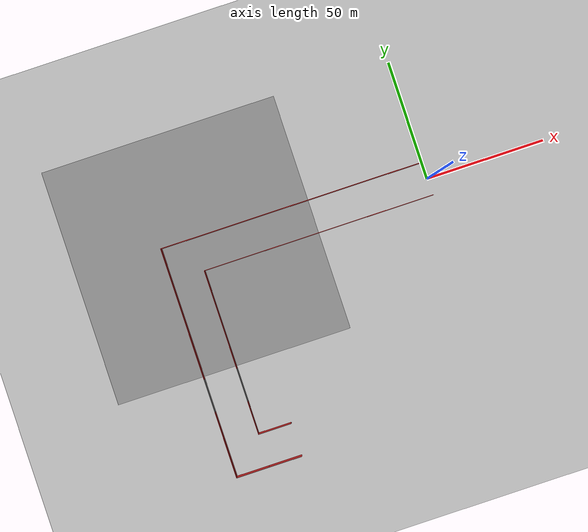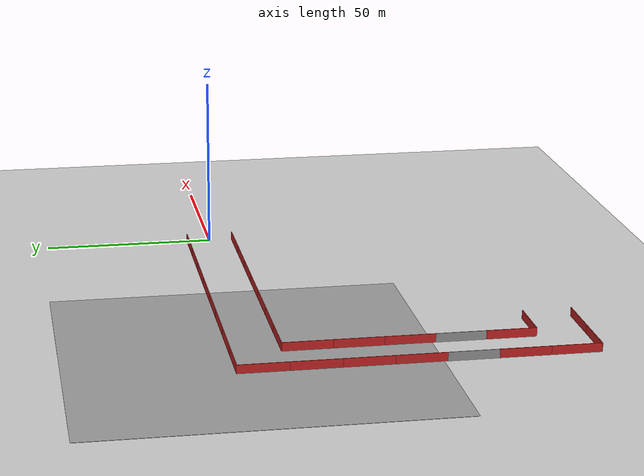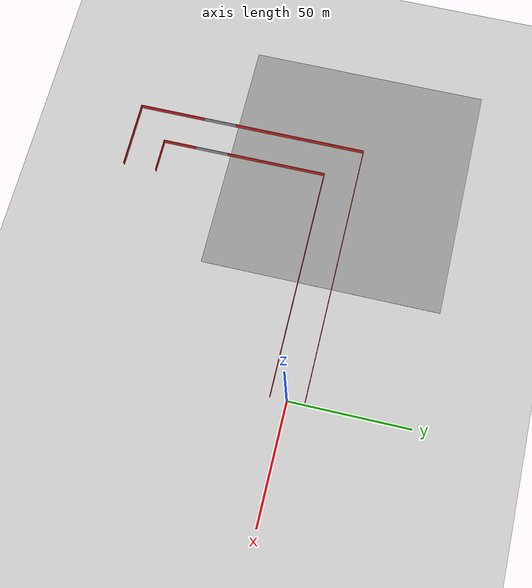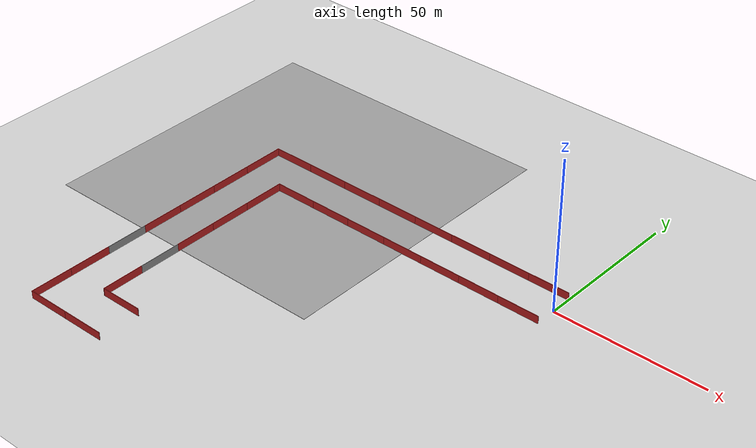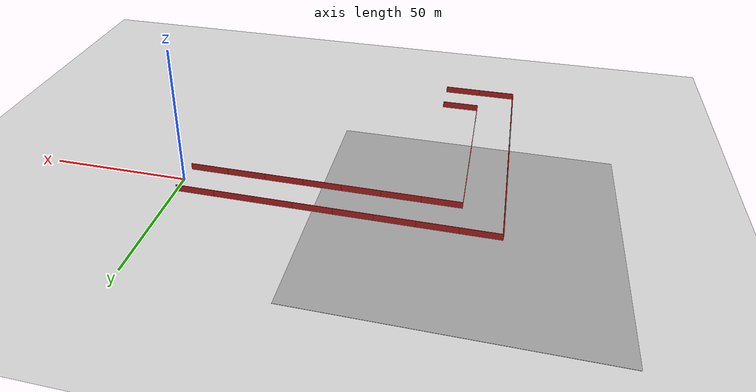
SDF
<sdf version="1.4">
 <world name="default">
  <model name="staright_28m_11">
   <link name="Wall_26">
    <collision name="Wall_26_Collision">
     <geometry><box><size>14 0.2 2.5</size></box></geometry>
     <pose>0 0 1.25 0 -0 0</pose>
    </collision>
    <visual name="Wall_26_Visual">
     <pose>0 0 1.25 0 -0 0</pose>
     <geometry><box><size>14 0.2 2.5</size></box></geometry>
     <material>
      <script>
       <uri>model://materials/scripts</uri>
       <uri>model://materials/textures</uri>
       <name>vrc/red_wall</name>
      </script>
     </material>
    </visual>
    <velocity_decay><linear>0</linear><angular>0</angular></velocity_decay>
    <pose>-7 -7 0 0 -0 0</pose>
   </link>
   <link name="Wall_28">
    <collision name="Wall_28_Collision">
     <geometry><box><size>14 0.2 2.5</size></box></geometry>
     <pose>0 0 1.25 0 -0 0</pose>
    </collision>
    <visual name="Wall_28_Visual">
     <pose>0 0 1.25 0 -0 0</pose>
     <geometry><box><size>14 0.2 2.5</size></box></geometry>
     <material>
      <script>
       <uri>model://materials/scripts</uri>
       <uri>model://materials/textures</uri>
       <name>vrc/red_wall</name>
      </script>
     </material>
    </visual>
    <velocity_decay><linear>0</linear><angular>0</angular></velocity_decay>
    <pose>-7 7 0 0 -0 0</pose>
   </link>
   <static>1</static>
   <link name="Wall_27">
    <collision name="Wall_26_Collision">
     <geometry><box><size>14 0.2 2.5</size></box></geometry>
     <pose>0 0 1.25 0 -0 0</pose>
    </collision>
    <visual name="Wall_26_Visual">
     <pose>0 0 1.25 0 -0 0</pose>
     <geometry><box><size>14 0.2 2.5</size></box></geometry>
     <material>
      <script>
       <uri>model://materials/scripts</uri>
       <uri>model://materials/textures</uri>
       <name>vrc/red_wall</name>
      </script>
     </material>
    </visual>
    <velocity_decay><linear>0</linear><angular>0</angular></velocity_decay>
    <pose>7 -7 0 0 -0 0</pose>
   </link>
   <link name="Wall_29">
    <collision name="Wall_28_Collision">
     <geometry><box><size>14 0.2 2.5</size></box></geometry>
     <pose>0 0 1.25 0 -0 0</pose>
    </collision>
    <visual name="Wall_28_Visual">
     <pose>0 0 1.25 0 -0 0</pose>
     <geometry><box><size>14 0.2 2.5</size></box></geometry>
     <material>
      <script>
       <uri>model://materials/scripts</uri>
       <uri>model://materials/textures</uri>
       <name>vrc/red_wall</name>
      </script>
     </material>
    </visual>
    <velocity_decay><linear>0</linear><angular>0</angular></velocity_decay>
    <pose>7 7 0 0 -0 0</pose>
   </link>
   <static>1</static>
   <pose>-14 0 0 0 -0 0</pose>
  </model>
  <model name="staright_28m_12">
   <link name="Wall_26">
    <collision name="Wall_26_Collision">
     <geometry><box><size>14 0.2 2.5</size></box></geometry>
     <pose>0 0 1.25 0 -0 0</pose>
    </collision>
    <visual name="Wall_26_Visual">
     <pose>0 0 1.25 0 -0 0</pose>
     <geometry><box><size>14 0.2 2.5</size></box></geometry>
     <material>
      <script>
       <uri>model://materials/scripts</uri>
       <uri>model://materials/textures</uri>
       <name>vrc/red_wall</name>
      </script>
     </material>
    </visual>
    <velocity_decay><linear>0</linear><angular>0</angular></velocity_decay>
    <pose>-7 -7 0 0 -0 0</pose>
   </link>
   <link name="Wall_28">
    <collision name="Wall_28_Collision">
     <geometry><box><size>14 0.2 2.5</size></box></geometry>
     <pose>0 0 1.25 0 -0 0</pose>
    </collision>
    <visual name="Wall_28_Visual">
     <pose>0 0 1.25 0 -0 0</pose>
     <geometry><box><size>14 0.2 2.5</size></box></geometry>
     <material>
      <script>
       <uri>model://materials/scripts</uri>
       <uri>model://materials/textures</uri>
       <name>vrc/red_wall</name>
      </script>
     </material>
    </visual>
    <velocity_decay><linear>0</linear><angular>0</angular></velocity_decay>
    <pose>-7 7 0 0 -0 0</pose>
   </link>
   <static>1</static>
   <link name="Wall_27">
    <collision name="Wall_26_Collision">
     <geometry><box><size>14 0.2 2.5</size></box></geometry>
     <pose>0 0 1.25 0 -0 0</pose>
    </collision>
    <visual name="Wall_26_Visual">
     <pose>0 0 1.25 0 -0 0</pose>
     <geometry><box><size>14 0.2 2.5</size></box></geometry>
     <material>
      <script>
       <uri>model://materials/scripts</uri>
       <uri>model://materials/textures</uri>
       <name>vrc/red_wall</name>
      </script>
     </material>
    </visual>
    <velocity_decay><linear>0</linear><angular>0</angular></velocity_decay>
    <pose>7 -7 0 0 -0 0</pose>
   </link>
   <link name="Wall_29">
    <collision name="Wall_28_Collision">
     <geometry><box><size>14 0.2 2.5</size></box></geometry>
     <pose>0 0 1.25 0 -0 0</pose>
    </collision>
    <visual name="Wall_28_Visual">
     <pose>0 0 1.25 0 -0 0</pose>
     <geometry><box><size>14 0.2 2.5</size></box></geometry>
     <material>
      <script>
       <uri>model://materials/scripts</uri>
       <uri>model://materials/textures</uri>
       <name>vrc/red_wall</name>
      </script>
     </material>
    </visual>
    <velocity_decay><linear>0</linear><angular>0</angular></velocity_decay>
    <pose>7 7 0 0 -0 0</pose>
   </link>
   <static>1</static>
   <pose>-42 0 0 0 -0 0</pose>
  </model>
  <model name="staright_28m_13">
   <link name="Wall_26">
    <collision name="Wall_26_Collision">
     <geometry><box><size>14 0.2 2.5</size></box></geometry>
     <pose>0 0 1.25 0 -0 0</pose>
    </collision>
    <visual name="Wall_26_Visual">
     <pose>0 0 1.25 0 -0 0</pose>
     <geometry><box><size>14 0.2 2.5</size></box></geometry>
     <material>
      <script>
       <uri>model://materials/scripts</uri>
       <uri>model://materials/textures</uri>
       <name>vrc/red_wall</name>
      </script>
     </material>
    </visual>
    <velocity_decay><linear>0</linear><angular>0</angular></velocity_decay>
    <pose>-7 -7 0 0 -0 0</pose>
   </link>
   <link name="Wall_28">
    <collision name="Wall_28_Collision">
     <geometry><box><size>14 0.2 2.5</size></box></geometry>
     <pose>0 0 1.25 0 -0 0</pose>
    </collision>
    <visual name="Wall_28_Visual">
     <pose>0 0 1.25 0 -0 0</pose>
     <geometry><box><size>14 0.2 2.5</size></box></geometry>
     <material>
      <script>
       <uri>model://materials/scripts</uri>
       <uri>model://materials/textures</uri>
       <name>vrc/red_wall</name>
      </script>
     </material>
    </visual>
    <velocity_decay><linear>0</linear><angular>0</angular></velocity_decay>
    <pose>-7 7 0 0 -0 0</pose>
   </link>
   <static>1</static>
   <link name="Wall_27">
    <collision name="Wall_26_Collision">
     <geometry><box><size>14 0.2 2.5</size></box></geometry>
     <pose>0 0 1.25 0 -0 0</pose>
    </collision>
    <visual name="Wall_26_Visual">
     <pose>0 0 1.25 0 -0 0</pose>
     <geometry><box><size>14 0.2 2.5</size></box></geometry>
     <material>
      <script>
       <uri>model://materials/scripts</uri>
       <uri>model://materials/textures</uri>
       <name>vrc/red_wall</name>
      </script>
     </material>
    </visual>
    <velocity_decay><linear>0</linear><angular>0</angular></velocity_decay>
    <pose>7 -7 0 0 -0 0</pose>
   </link>
   <link name="Wall_29">
    <collision name="Wall_28_Collision">
     <geometry><box><size>14 0.2 2.5</size></box></geometry>
     <pose>0 0 1.25 0 -0 0</pose>
    </collision>
    <visual name="Wall_28_Visual">
     <pose>0 0 1.25 0 -0 0</pose>
     <geometry><box><size>14 0.2 2.5</size></box></geometry>
     <material>
      <script>
       <uri>model://materials/scripts</uri>
       <uri>model://materials/textures</uri>
       <name>vrc/red_wall</name>
      </script>
     </material>
    </visual>
    <velocity_decay><linear>0</linear><angular>0</angular></velocity_decay>
    <pose>7 7 0 0 -0 0</pose>
   </link>
   <static>1</static>
   <pose>-70 0 0 0 -0 0</pose>
  </model>
  <model name="right_angle_turn_4">
   <link name="Wall_0">
    <collision name="Wall_0_Collision">
     <geometry><box><size>14.1 0.2 2.5</size></box></geometry>
     <pose>0 0 1.25 0 -0 0</pose>
    </collision>
    <visual name="Wall_0_Visual">
     <pose>0 0 1.25 0 -0 0</pose>
     <geometry><box><size>14.1 0.2 2.5</size></box></geometry>
     <material>
      <script>
       <uri>model://materials/scripts</uri>
       <uri>model://materials/textures</uri>
       <name>vrc/red_wall_x4</name>
      </script>
     </material>
    </visual>
    <velocity_decay><linear>0</linear><angular>0</angular></velocity_decay>
    <pose>0 -6.95 0 0 0 -1.5708</pose>
   </link>
   <link name="Wall_10">
    <collision name="Wall_10_Collision">
     <geometry><box><size>13.8 0.2 2.5</size></box></geometry>
     <pose>0 0 1.25 0 -0 0</pose>
    </collision>
    <visual name="Wall_10_Visual">
     <pose>0 0 1.25 0 -0 0</pose>
     <geometry><box><size>13.8 0.2 2.5</size></box></geometry>
     <material>
      <script>
       <uri>model://materials/scripts</uri>
       <uri>model://materials/textures</uri>
       <name>vrc/red_wall_x4</name>
      </script>
     </material>
    </visual>
    <velocity_decay><linear>0</linear><angular>0</angular></velocity_decay>
    <pose>14 7 0 0 0 -1.5708</pose>
   </link>
   <link name="Wall_2">
    <collision name="Wall_2_Collision">
     <geometry><box><size>13.9 0.2 2.5</size></box></geometry>
     <pose>0 0 1.25 0 -0 0</pose>
    </collision>
    <visual name="Wall_2_Visual">
     <pose>0 0 1.25 0 -0 0</pose>
     <geometry><box><size>13.9 0.2 2.5</size></box></geometry>
     <material>
      <script>
       <uri>model://materials/scripts</uri>
       <uri>model://materials/textures</uri>
       <name>vrc/red_wall_x4</name>
      </script>
     </material>
    </visual>
    <velocity_decay><linear>0</linear><angular>0</angular></velocity_decay>
    <pose>-7.05 0 0 0 -0 3.14159</pose>
   </link>
   <link name="Wall_4">
    <collision name="Wall_4_Collision">
     <geometry><box><size>14.1 0.2 2.5</size></box></geometry>
     <pose>0 0 1.25 0 -0 0</pose>
    </collision>
    <visual name="Wall_4_Visual">
     <pose>0 0 1.25 0 -0 0</pose>
     <geometry><box><size>14.1 0.2 2.5</size></box></geometry>
     <material>
      <script>
       <uri>model://materials/scripts</uri>
       <uri>model://materials/textures</uri>
       <name>vrc/red_wall_x4</name>
      </script>
     </material>
    </visual>
    <velocity_decay><linear>0</linear><angular>0</angular></velocity_decay>
    <pose>14 -6.95 0 0 -0 1.5708</pose>
   </link>
   <link name="Wall_6">
    <collision name="Wall_6_Collision">
     <geometry><box><size>14.1 0.2 2.5</size></box></geometry>
     <pose>0 0 1.25 0 -0 0</pose>
    </collision>
    <visual name="Wall_6_Visual">
     <pose>0 0 1.25 0 -0 0</pose>
     <geometry><box><size>14.1 0.2 2.5</size></box></geometry>
     <material>
      <script>
       <uri>model://materials/scripts</uri>
       <uri>model://materials/textures</uri>
       <name>vrc/red_wall_x4</name>
      </script>
     </material>
    </visual>
    <velocity_decay><linear>0</linear><angular>0</angular></velocity_decay>
    <pose>-6.95 14 0 0 -0 0</pose>
   </link>
   <link name="Wall_8">
    <collision name="Wall_8_Collision">
     <geometry><box><size>14 0.2 2.5</size></box></geometry>
     <pose>0 0 1.25 0 -0 0</pose>
    </collision>
    <visual name="Wall_8_Visual">
     <pose>0 0 1.25 0 -0 0</pose>
     <geometry><box><size>14 0.2 2.5</size></box></geometry>
     <material>
      <script>
       <uri>model://materials/scripts</uri>
       <uri>model://materials/textures</uri>
       <name>vrc/red_wall_x4</name>
      </script>
     </material>
    </visual>
    <velocity_decay><linear>0</linear><angular>0</angular></velocity_decay>
    <pose>7.1 14 0 0 -0 0</pose>
   </link>
   <static>1</static>
   <pose>-98 -7 0 0 -0 1.5708</pose>
  </model>
  <model name="right_angle_turn_5">
   <link name="Wall_0">
    <collision name="Wall_0_Collision">
     <geometry><box><size>14.1 0.2 2.5</size></box></geometry>
     <pose>0 0 1.25 0 -0 0</pose>
    </collision>
    <visual name="Wall_0_Visual">
     <pose>0 0 1.25 0 -0 0</pose>
     <geometry><box><size>14.1 0.2 2.5</size></box></geometry>
     <material>
      <script>
       <uri>model://materials/scripts</uri>
       <uri>model://materials/textures</uri>
       <name>vrc/red_wall_x4</name>
      </script>
     </material>
    </visual>
    <velocity_decay><linear>0</linear><angular>0</angular></velocity_decay>
    <pose>0 -6.95 0 0 0 -1.5708</pose>
   </link>
   <link name="Wall_10">
    <collision name="Wall_10_Collision">
     <geometry><box><size>13.8 0.2 2.5</size></box></geometry>
     <pose>0 0 1.25 0 -0 0</pose>
    </collision>
    <visual name="Wall_10_Visual">
     <pose>0 0 1.25 0 -0 0</pose>
     <geometry><box><size>13.8 0.2 2.5</size></box></geometry>
     <material>
      <script>
       <uri>model://materials/scripts</uri>
       <uri>model://materials/textures</uri>
       <name>vrc/red_wall_x4</name>
      </script>
     </material>
    </visual>
    <velocity_decay><linear>0</linear><angular>0</angular></velocity_decay>
    <pose>14 7 0 0 0 -1.5708</pose>
   </link>
   <link name="Wall_2">
    <collision name="Wall_2_Collision">
     <geometry><box><size>13.9 0.2 2.5</size></box></geometry>
     <pose>0 0 1.25 0 -0 0</pose>
    </collision>
    <visual name="Wall_2_Visual">
     <pose>0 0 1.25 0 -0 0</pose>
     <geometry><box><size>13.9 0.2 2.5</size></box></geometry>
     <material>
      <script>
       <uri>model://materials/scripts</uri>
       <uri>model://materials/textures</uri>
       <name>vrc/red_wall_x4</name>
      </script>
     </material>
    </visual>
    <velocity_decay><linear>0</linear><angular>0</angular></velocity_decay>
    <pose>-7.05 0 0 0 -0 3.14159</pose>
   </link>
   <link name="Wall_4">
    <collision name="Wall_4_Collision">
     <geometry><box><size>14.1 0.2 2.5</size></box></geometry>
     <pose>0 0 1.25 0 -0 0</pose>
    </collision>
    <visual name="Wall_4_Visual">
     <pose>0 0 1.25 0 -0 0</pose>
     <geometry><box><size>14.1 0.2 2.5</size></box></geometry>
     <material>
      <script>
       <uri>model://materials/scripts</uri>
       <uri>model://materials/textures</uri>
       <name>vrc/red_wall_x4</name>
      </script>
     </material>
    </visual>
    <velocity_decay><linear>0</linear><angular>0</angular></velocity_decay>
    <pose>14 -6.95 0 0 -0 1.5708</pose>
   </link>
   <link name="Wall_6">
    <collision name="Wall_6_Collision">
     <geometry><box><size>14.1 0.2 2.5</size></box></geometry>
     <pose>0 0 1.25 0 -0 0</pose>
    </collision>
    <visual name="Wall_6_Visual">
     <pose>0 0 1.25 0 -0 0</pose>
     <geometry><box><size>14.1 0.2 2.5</size></box></geometry>
     <material>
      <script>
       <uri>model://materials/scripts</uri>
       <uri>model://materials/textures</uri>
       <name>vrc/red_wall_x4</name>
      </script>
     </material>
    </visual>
    <velocity_decay><linear>0</linear><angular>0</angular></velocity_decay>
    <pose>-6.95 14 0 0 -0 0</pose>
   </link>
   <link name="Wall_8">
    <collision name="Wall_8_Collision">
     <geometry><box><size>14 0.2 2.5</size></box></geometry>
     <pose>0 0 1.25 0 -0 0</pose>
    </collision>
    <visual name="Wall_8_Visual">
     <pose>0 0 1.25 0 -0 0</pose>
     <geometry><box><size>14 0.2 2.5</size></box></geometry>
     <material>
      <script>
       <uri>model://materials/scripts</uri>
       <uri>model://materials/textures</uri>
       <name>vrc/red_wall_x4</name>
      </script>
     </material>
    </visual>
    <velocity_decay><linear>0</linear><angular>0</angular></velocity_decay>
    <pose>7.1 14 0 0 -0 0</pose>
   </link>
   <static>1</static>
   <pose>-98 -77 0 0 -0 3.14159</pose>
  </model>
  <model name="staright_28m_16">
   <link name="Wall_26">
    <collision name="Wall_26_Collision">
     <geometry><box><size>14 0.2 2.5</size></box></geometry>
     <pose>0 0 1.25 0 -0 0</pose>
    </collision>
    <visual name="Wall_26_Visual">
     <pose>0 0 1.25 0 -0 0</pose>
     <geometry><box><size>14 0.2 2.5</size></box></geometry>
     <material>
      <script>
       <uri>model://materials/scripts</uri>
       <uri>model://materials/textures</uri>
       <name>vrc/red_wall</name>
      </script>
     </material>
    </visual>
    <velocity_decay><linear>0</linear><angular>0</angular></velocity_decay>
    <pose>-7 -7 0 0 -0 0</pose>
   </link>
   <link name="Wall_28">
    <collision name="Wall_28_Collision">
     <geometry><box><size>14 0.2 2.5</size></box></geometry>
     <pose>0 0 1.25 0 -0 0</pose>
    </collision>
    <visual name="Wall_28_Visual">
     <pose>0 0 1.25 0 -0 0</pose>
     <geometry><box><size>14 0.2 2.5</size></box></geometry>
     <material>
      <script>
       <uri>model://materials/scripts</uri>
       <uri>model://materials/textures</uri>
       <name>vrc/red_wall</name>
      </script>
     </material>
    </visual>
    <velocity_decay><linear>0</linear><angular>0</angular></velocity_decay>
    <pose>-7 7 0 0 -0 0</pose>
   </link>
   <static>1</static>
   <link name="Wall_27">
    <collision name="Wall_26_Collision">
     <geometry><box><size>14 0.2 2.5</size></box></geometry>
     <pose>0 0 1.25 0 -0 0</pose>
    </collision>
    <visual name="Wall_26_Visual">
     <pose>0 0 1.25 0 -0 0</pose>
     <geometry><box><size>14 0.2 2.5</size></box></geometry>
     <material>
      <script>
       <uri>model://materials/scripts</uri>
       <uri>model://materials/textures</uri>
       <name>vrc/red_wall</name>
      </script>
     </material>
    </visual>
    <velocity_decay><linear>0</linear><angular>0</angular></velocity_decay>
    <pose>7 -7 0 0 -0 0</pose>
   </link>
   <link name="Wall_29">
    <collision name="Wall_28_Collision">
     <geometry><box><size>14 0.2 2.5</size></box></geometry>
     <pose>0 0 1.25 0 -0 0</pose>
    </collision>
    <visual name="Wall_28_Visual">
     <pose>0 0 1.25 0 -0 0</pose>
     <geometry><box><size>14 0.2 2.5</size></box></geometry>
     <material>
      <script>
       <uri>model://materials/scripts</uri>
       <uri>model://materials/textures</uri>
       <name>vrc/red_wall</name>
      </script>
     </material>
    </visual>
    <velocity_decay><linear>0</linear><angular>0</angular></velocity_decay>
    <pose>7 7 0 0 -0 0</pose>
   </link>
   <static>1</static>
   <pose>-105 -35 0 0 0 -1.5708</pose>
  </model>
  <model name="ground_plane">
   <static>1</static>
   <link name="link">
    <collision name="collision">
     <geometry><plane><normal>0 0 1</normal><size>100 100</size></plane></geometry>
     <surface><friction><ode><mu>100</mu><mu2>50</mu2></ode></friction></surface>
    </collision>
    <visual name="visual">
     <cast_shadows>0</cast_shadows>
     <geometry><plane><normal>0 0 1</normal><size>100 100</size></plane></geometry>
     <material>
      <script><uri>file://media/materials/scripts/gazebo.material</uri><name>Gazebo/Grey</name></script>
     </material>
    </visual>
    <velocity_decay><linear>0</linear><angular>0</angular></velocity_decay>
   </link>
   <pose>1 -98 0 0 -0 0</pose>
  </model>
  <model name="ground_plane_4">
   <static>1</static>
   <link name="link">
    <collision name="collision">
     <geometry><plane><normal>0 0 1</normal><size>100 100</size></plane></geometry>
     <surface><friction><ode><mu>100</mu><mu2>50</mu2></ode></friction></surface>
    </collision>
    <visual name="visual">
     <cast_shadows>0</cast_shadows>
     <geometry><plane><normal>0 0 1</normal><size>100 100</size></plane></geometry>
     <material>
      <script><uri>file://media/materials/scripts/gazebo.material</uri><name>Gazebo/Grey</name></script>
     </material>
    </visual>
    <velocity_decay><linear>0</linear><angular>0</angular></velocity_decay>
   </link>
   <pose>-99 2 0 0 -0 0</pose>
  </model>
  <model name="model">
   <link name="Wall_0">
    <collision name="Wall_0_Collision">
     <geometry><box><size>14 0.2 2.5</size></box></geometry>
     <pose>0 0 1.25 0 -0 0</pose>
    </collision>
    <visual name="Wall_0_Visual">
     <pose>0 0 1.25 0 -0 0</pose>
     <geometry><box><size>14 0.2 2.5</size></box></geometry>
     <material>
      <script><uri>file://media/materials/scripts/gazebo.material</uri><name>Gazebo/Grey</name></script>
     </material>
    </visual>
    <velocity_decay><linear>0</linear><angular>0</angular></velocity_decay>
    <pose>0 7 0 0 -0 0</pose>
   </link>
   <link name="Wall_2">
    <collision name="Wall_2_Collision">
     <geometry><box><size>14 0.2 2.5</size></box></geometry>
     <pose>0 0 1.25 0 -0 0</pose>
    </collision>
    <visual name="Wall_2_Visual">
     <pose>0 0 1.25 0 -0 0</pose>
     <geometry><box><size>14 0.2 2.5</size></box></geometry>
     <material>
      <script><uri>file://media/materials/scripts/gazebo.material</uri><name>Gazebo/Grey</name></script>
     </material>
    </visual>
    <velocity_decay><linear>0</linear><angular>0</angular></velocity_decay>
    <pose>0 -7 0 0 -0 0</pose>
   </link>
   <static>1</static>
   <pose>-105 -56 0 0 0 -1.5708</pose>
  </model>
 </world>
</sdf>
